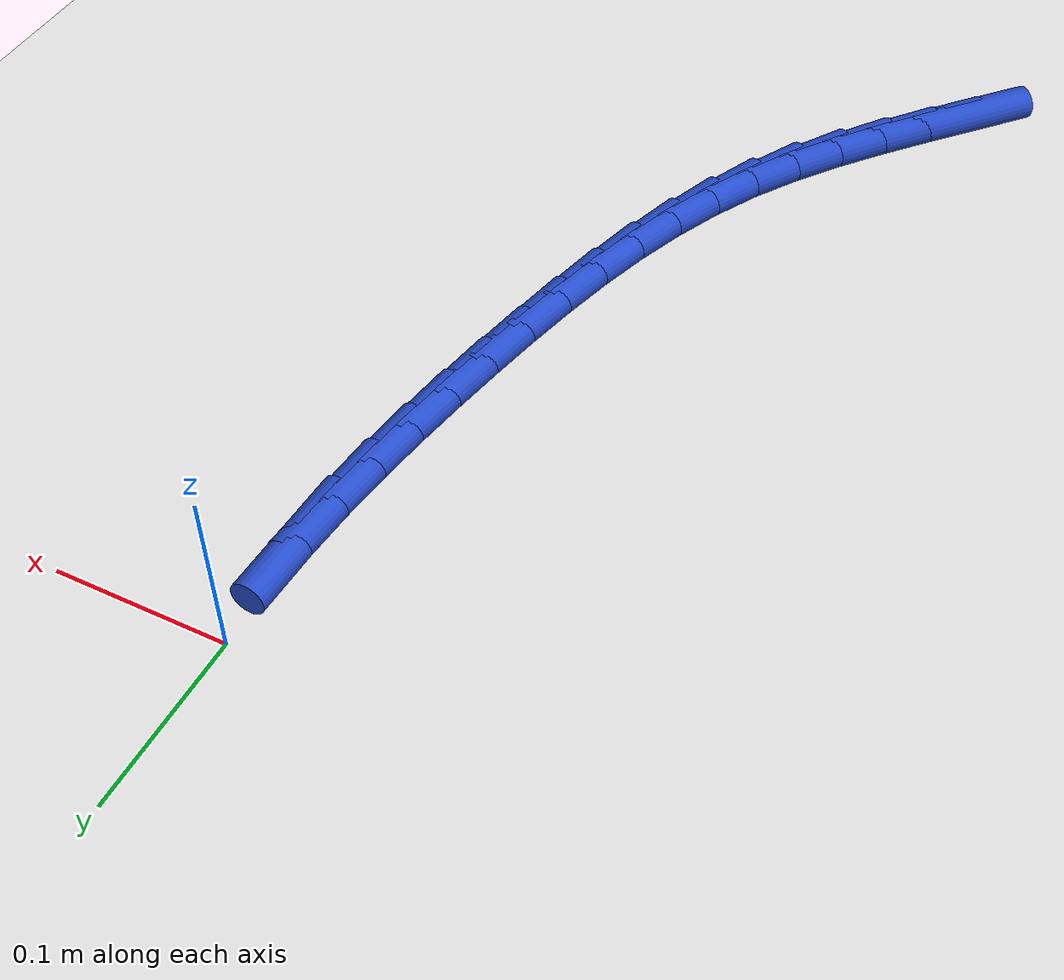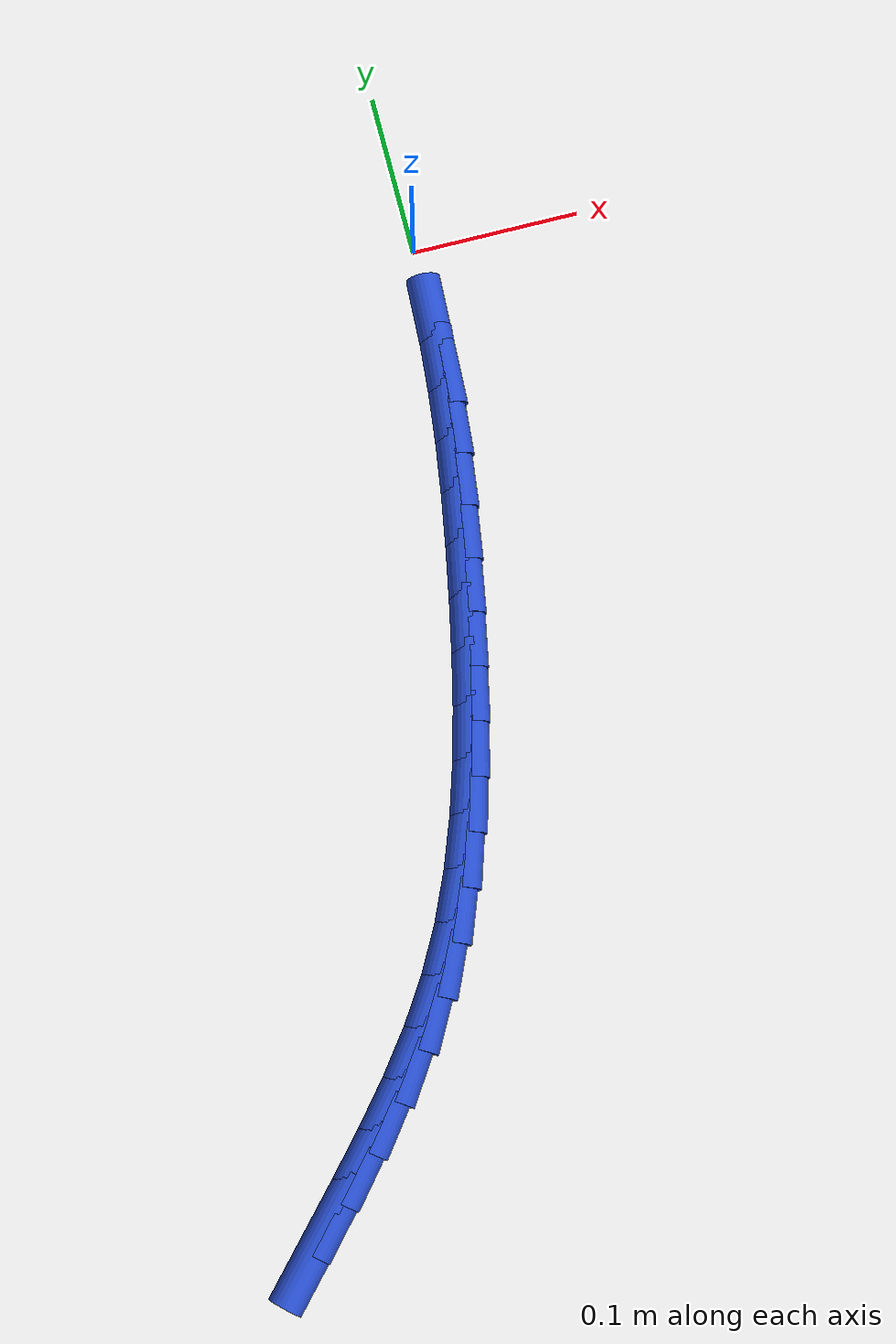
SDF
<sdf version="1.6">
 <world name="default">
  <model name="ground_plane">
   <static>1</static>
   <link name="link">
    <collision name="collision">
     <geometry><plane><normal>0 0 1</normal><size>100 100</size></plane></geometry>
     <surface><friction><ode><mu>100</mu><mu2>50</mu2></ode></friction></surface>
    </collision>
    <visual name="visual">
     <cast_shadows>0</cast_shadows>
     <geometry><plane><normal>0 0 1</normal><size>100 100</size></plane></geometry>
     <material>
      <script><uri>file://media/materials/scripts/gazebo.material</uri><name>Gazebo/WhiteGlow</name></script>
     </material>
    </visual>
   </link>
  </model>
  <model name="line">
   <link name="link_271">
    <pose>-0.18903481532704453 -0.5395586028215972 0.01 0 1.57 0.8300597762971715</pose>
    <collision name="collision">
     <geometry><cylinder><radius>0.01</radius><length>0.08</length></cylinder></geometry>
    </collision>
    <visual name="visual">
     <material>
      <script><name>Gazebo/Blue</name><uri>file://media/materials/scripts/gazebo.material</uri></script>
     </material>
     <geometry><cylinder><radius>0.01</radius><length>0.08</length></cylinder></geometry>
    </visual>
   </link>
   <link name="link_272">
    <pose>-0.1679750209746835 -0.516528366282036 0.01 0 1.57 0.8432981745983538</pose>
    <collision name="collision">
     <geometry><cylinder><radius>0.01</radius><length>0.08</length></cylinder></geometry>
    </collision>
    <visual name="visual">
     <material>
      <script><name>Gazebo/Blue</name><uri>file://media/materials/scripts/gazebo.material</uri></script>
     </material>
     <geometry><cylinder><radius>0.01</radius><length>0.08</length></cylinder></geometry>
    </visual>
   </link>
   <link name="link_273">
    <pose>-0.14729032655703464 -0.4932981530411074 0.01 0 1.57 0.8742309230579711</pose>
    <collision name="collision">
     <geometry><cylinder><radius>0.01</radius><length>0.08</length></cylinder></geometry>
    </collision>
    <visual name="visual">
     <material>
      <script><name>Gazebo/Blue</name><uri>file://media/materials/scripts/gazebo.material</uri></script>
     </material>
     <geometry><cylinder><radius>0.01</radius><length>0.08</length></cylinder></geometry>
    </visual>
   </link>
   <link name="link_274">
    <pose>-0.12745593056003524 -0.46958511001882475 0.01 0 1.57 0.9233887437568242</pose>
    <collision name="collision">
     <geometry><cylinder><radius>0.01</radius><length>0.08</length></cylinder></geometry>
    </collision>
    <visual name="visual">
     <material>
      <script><name>Gazebo/Blue</name><uri>file://media/materials/scripts/gazebo.material</uri></script>
     </material>
     <geometry><cylinder><radius>0.01</radius><length>0.08</length></cylinder></geometry>
    </visual>
   </link>
   <link name="link_275">
    <pose>-0.10894703146962258 -0.44510638413520154 0.01 0 1.57 0.9912474033008429</pose>
    <collision name="collision">
     <geometry><cylinder><radius>0.01</radius><length>0.08</length></cylinder></geometry>
    </collision>
    <visual name="visual">
     <material>
      <script><name>Gazebo/Blue</name><uri>file://media/materials/scripts/gazebo.material</uri></script>
     </material>
     <geometry><cylinder><radius>0.01</radius><length>0.08</length></cylinder></geometry>
    </visual>
   </link>
   <link name="link_276">
    <pose>-0.09223882756720028 -0.4195791224409698 0.01 0 1.57 1.072789995420552</pose>
    <collision name="collision">
     <geometry><cylinder><radius>0.01</radius><length>0.08</length></cylinder></geometry>
    </collision>
    <visual name="visual">
     <material>
      <script><name>Gazebo/Blue</name><uri>file://media/materials/scripts/gazebo.material</uri></script>
     </material>
     <geometry><cylinder><radius>0.01</radius><length>0.08</length></cylinder></geometry>
    </visual>
   </link>
   <link name="link_277">
    <pose>-0.07767947782164124 -0.39280166352679824 0.01 0 1.57 1.1482230543084129</pose>
    <collision name="collision">
     <geometry><cylinder><radius>0.01</radius><length>0.08</length></cylinder></geometry>
    </collision>
    <visual name="visual">
     <material>
      <script><name>Gazebo/Blue</name><uri>file://media/materials/scripts/gazebo.material</uri></script>
     </material>
     <geometry><cylinder><radius>0.01</radius><length>0.08</length></cylinder></geometry>
    </visual>
   </link>
   <link name="link_278">
    <pose>-0.0651267424385302 -0.364885762594175 0.01 0 1.57 1.2125858023691622</pose>
    <collision name="collision">
     <geometry><cylinder><radius>0.01</radius><length>0.08</length></cylinder></geometry>
    </collision>
    <visual name="visual">
     <material>
      <script><name>Gazebo/Blue</name><uri>file://media/materials/scripts/gazebo.material</uri></script>
     </material>
     <geometry><cylinder><radius>0.01</radius><length>0.08</length></cylinder></geometry>
    </visual>
   </link>
   <link name="link_279">
    <pose>-0.054320067459885546 -0.3360187900926946 0.01 0 1.57 1.2660191334157773</pose>
    <collision name="collision">
     <geometry><cylinder><radius>0.01</radius><length>0.08</length></cylinder></geometry>
    </collision>
    <visual name="visual">
     <material>
      <script><name>Gazebo/Blue</name><uri>file://media/materials/scripts/gazebo.material</uri></script>
     </material>
     <geometry><cylinder><radius>0.01</radius><length>0.08</length></cylinder></geometry>
    </visual>
   </link>
   <link name="link_280">
    <pose>-0.04499889892772603 -0.3063881164719525 0.01 0 1.57 1.3089267137773926</pose>
    <collision name="collision">
     <geometry><cylinder><radius>0.01</radius><length>0.08</length></cylinder></geometry>
    </collision>
    <visual name="visual">
     <material>
      <script><name>Gazebo/Blue</name><uri>file://media/materials/scripts/gazebo.material</uri></script>
     </material>
     <geometry><cylinder><radius>0.01</radius><length>0.08</length></cylinder></geometry>
    </visual>
   </link>
   <link name="link_281">
    <pose>-0.03690268288406947 -0.2761811121815412 0.01 0 1.57 1.3417888467144092</pose>
    <collision name="collision">
     <geometry><cylinder><radius>0.01</radius><length>0.08</length></cylinder></geometry>
    </collision>
    <visual name="visual">
     <material>
      <script><name>Gazebo/Blue</name><uri>file://media/materials/scripts/gazebo.material</uri></script>
     </material>
     <geometry><cylinder><radius>0.01</radius><length>0.08</length></cylinder></geometry>
    </visual>
   </link>
   <link name="link_282">
    <pose>-0.029770865370934613 -0.245585147671056 0.01 0 1.57 1.3650332652261863</pose>
    <collision name="collision">
     <geometry><cylinder><radius>0.01</radius><length>0.08</length></cylinder></geometry>
    </collision>
    <visual name="visual">
     <material>
      <script><name>Gazebo/Blue</name><uri>file://media/materials/scripts/gazebo.material</uri></script>
     </material>
     <geometry><cylinder><radius>0.01</radius><length>0.08</length></cylinder></geometry>
    </visual>
   </link>
   <link name="link_283">
    <pose>-0.02334289244478943 -0.2147875933844532 0.01 0 1.57 1.381323938818148</pose>
    <collision name="collision">
     <geometry><cylinder><radius>0.01</radius><length>0.08</length></cylinder></geometry>
    </collision>
    <visual name="visual">
     <material>
      <script><name>Gazebo/Blue</name><uri>file://media/materials/scripts/gazebo.material</uri></script>
     </material>
     <geometry><cylinder><radius>0.01</radius><length>0.08</length></cylinder></geometry>
    </visual>
   </link>
   <link name="link_284">
    <pose>-0.017428754487648038 -0.18394829293104467 0.01 0 1.57 1.4001335063134408</pose>
    <collision name="collision">
     <geometry><cylinder><radius>0.01</radius><length>0.08</length></cylinder></geometry>
    </collision>
    <visual name="visual">
     <material>
      <script><name>Gazebo/Blue</name><uri>file://media/materials/scripts/gazebo.material</uri></script>
     </material>
     <geometry><cylinder><radius>0.01</radius><length>0.08</length></cylinder></geometry>
    </visual>
   </link>
   <link name="link_285">
    <pose>-0.012115644114071898 -0.15311892388468643 0.01 0 1.57 1.4238867275529599</pose>
    <collision name="collision">
     <geometry><cylinder><radius>0.01</radius><length>0.08</length></cylinder></geometry>
    </collision>
    <visual name="visual">
     <material>
      <script><name>Gazebo/Blue</name><uri>file://media/materials/scripts/gazebo.material</uri></script>
     </material>
     <geometry><cylinder><radius>0.01</radius><length>0.08</length></cylinder></geometry>
    </visual>
   </link>
   <link name="link_286">
    <pose>-0.0075588325812133 -0.12232459910941705 0.01 0 1.57 1.4527423272955375</pose>
    <collision name="collision">
     <geometry><cylinder><radius>0.01</radius><length>0.08</length></cylinder></geometry>
    </collision>
    <visual name="visual">
     <material>
      <script><name>Gazebo/Blue</name><uri>file://media/materials/scripts/gazebo.material</uri></script>
     </material>
     <geometry><cylinder><radius>0.01</radius><length>0.08</length></cylinder></geometry>
    </visual>
   </link>
   <link name="link_287">
    <pose>-0.003913591146224523 -0.09159043146927513 0.01 0 1.57 1.4868669450467205</pose>
    <collision name="collision">
     <geometry><cylinder><radius>0.01</radius><length>0.08</length></cylinder></geometry>
    </collision>
    <visual name="visual">
     <material>
      <script><name>Gazebo/Blue</name><uri>file://media/materials/scripts/gazebo.material</uri></script>
     </material>
     <geometry><cylinder><radius>0.01</radius><length>0.08</length></cylinder></geometry>
    </visual>
   </link>
   <link name="link_288">
    <pose>-0.0013351910662578606 -0.06094153382829926 0.01 0 1.57 1.5264131342367502</pose>
    <collision name="collision">
     <geometry><cylinder><radius>0.01</radius><length>0.08</length></cylinder></geometry>
    </collision>
    <visual name="visual">
     <material>
      <script><name>Gazebo/Blue</name><uri>file://media/materials/scripts/gazebo.material</uri></script>
     </material>
     <geometry><cylinder><radius>0.01</radius><length>0.08</length></cylinder></geometry>
    </visual>
   </link>
  </model>
 </world>
</sdf>
